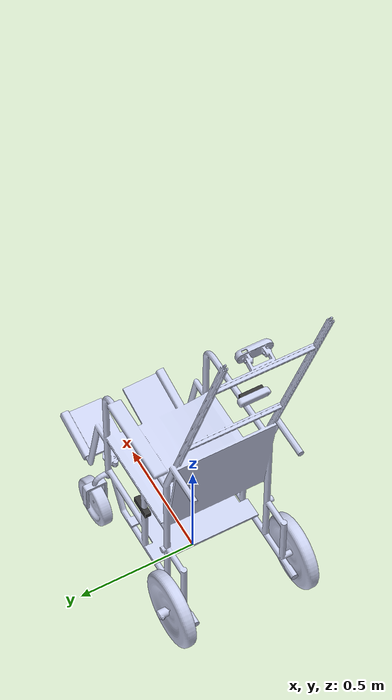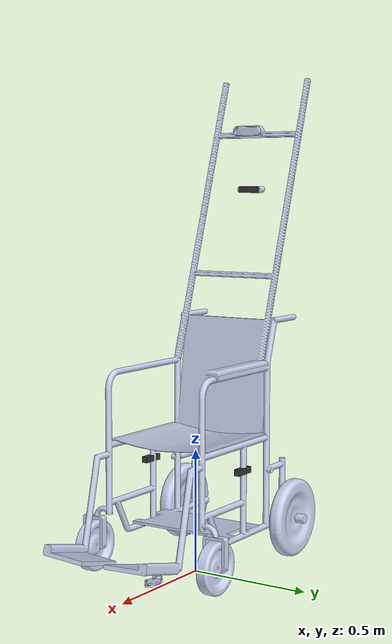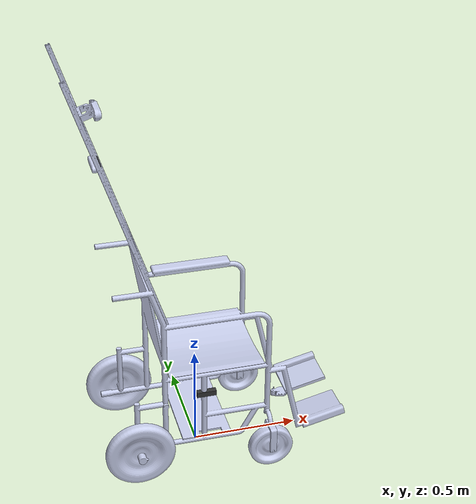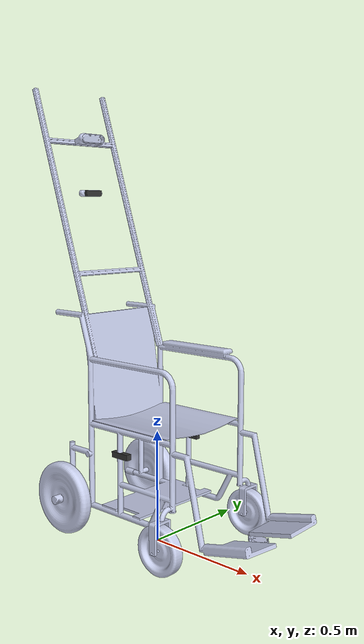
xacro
<?xml version="1.0" encoding="utf-8"?>
<robot
  name="wheelchair_description" xmlns:xacro="http://ros.org/wiki/xacro">

  <!-- Start GZ or Ignition depending on ROS 2 Version -->
  <xacro:arg name="is_ignition" default="true"/>

  <!-- Load Simulated or Real Hardware Interfaces -->
  <xacro:arg name="is_sim" default="true"/>

  <!-- Mathematical constants (pi is already defined by xacro) -->

  <!-- Include Gazebo Parameters -->
  <xacro:include filename="$(find wheelchair_description)/urdf/wc_gazebo.xacro" />

  <!-- Include ros2_control Plugins -->
  <xacro:include filename="$(find wheelchair_description)/urdf/wc_control.xacro" />

  <!-- Include Multi-Camera Configuration (Left + Right cameras) -->
  <xacro:include filename="$(find wheelchair_description)/urdf/cameras.xacro" />

  <link name="base_link">
  </link>

  <joint name="base_link_joint" type="fixed">
    <parent link="base_link"/>
    <child link="wheelchair_main"/>
    <origin xyz="0 0 0.2" rpy="0 0 0"/>
  </joint>

  <link
    name="wheelchair_main">
    <inertial>
      <origin
        xyz="0.023007 0.0098899 0.35723"
        rpy="0 0 0" />
      <mass
        value="50" />
      <inertia
        ixx="0.59682"
        ixy="-1.598E-05"
        ixz="0.20053"
        iyy="0.9932"
        iyz="7.2097E-05"
        izz="0.50644" />
    </inertial>
    <visual>
      <origin
        xyz="0 0 0"
        rpy="0 0 0" />
      <geometry>
        <mesh
          filename="package://wheelchair_description/meshes/wheelchair_main.STL"/>
      </geometry>
      <material
        name="">
        <color
          rgba="0.79216 0.81961 0.93333 1" />
      </material>
    </visual>
    <collision>
      <origin
        xyz="0 0 0"
        rpy="0 0 0" />
      <geometry>
        <mesh
          filename="package://wheelchair_description/meshes/wheelchair_main.STL"/>
      </geometry>
    </collision>
  </link>
  <link
    name="left_wheel">
    <inertial>
      <origin
        xyz="0 -8.3267E-17 -0.016"
        rpy="0 0 0" />
      <mass
        value="3.5068" />
      <inertia
        ixx="0.025596"
        ixy="1.4766E-18"
        ixz="3.4387E-17"
        iyy="0.025596"
        iyz="-1.1439E-19"
        izz="0.049823" />
    </inertial>
    <visual>
      <origin
        xyz="0 0 0"
        rpy="0 0 0" />
      <geometry>
        <mesh
          filename="package://wheelchair_description/meshes/left_wheel.STL" />
      </geometry>
      <material
        name="">
        <color
          rgba="0.79216 0.81961 0.93333 1" />
      </material>
    </visual>
    <collision>
      <origin
        xyz="0 0 0"
        rpy="0 0 0" />
      <geometry>
        <mesh
          filename="package://wheelchair_description/meshes/left_wheel.STL" />
      </geometry>
    </collision>
  </link>
  <joint
    name="leftwheel"
    type="continuous">
    <origin
      xyz="-0.31984 0.285 -0.00794"
      rpy="-1.5708 0 0" />
    <parent
      link="wheelchair_main" />
    <child
      link="left_wheel" />
    <axis
      xyz="0 0 1" />
    <limit
      lower="-3.14"
      upper="3.14"
      effort="25"
      velocity="20" />
  </joint>
  <link
    name="left_encoder">
    <inertial>
      <origin
        xyz="-0.0001485 -4.9468E-06 0.038366"
        rpy="0 0 0" />
      <mass
        value="0.16" />
      <inertia
        ixx="7.5141E-06"
        ixy="-3.4015E-09"
        ixz="4.8456E-08"
        iyy="7.6349E-06"
        iyz="6.7412E-10"
        izz="7.5873E-06" />
    </inertial>
    <visual>
      <origin
        xyz="0 0 0"
        rpy="0 0 0" />
      <geometry>
        <mesh
          filename="package://wheelchair_description/meshes/left_encoder.STL"/>
      </geometry>
      <material
        name="">
        <color
          rgba="0.79216 0.81961 0.93333 1" />
      </material>
    </visual>
    <collision>
      <origin
        xyz="0 0 0"
        rpy="0 0 0" />
      <geometry>
        <mesh
          filename="package://wheelchair_description/meshes/left_encoder.STL" />
      </geometry>
    </collision>
  </link>
  <joint
    name="l_encoder_joint"
    type="fixed">
    <origin
      xyz="0 0 -0.015366"
      rpy="0 0 0" />
    <parent
      link="left_wheel" />
    <child
      link="left_encoder" />
    <axis
      xyz="0 0 0" />
  </joint>
  <link
    name="right_wheel">
    <inertial>
      <origin
        xyz="-1.11022302462516E-16 3.88578058618805E-16 0.0159999999999998"
        rpy="0 0 0" />
      <mass
        value="3.50680611696861" />
      <inertia
        ixx="0.0255963516724083"
        ixy="1.16466719109124E-18"
        ixz="6.8967822043798E-18"
        iyy="0.0255963516724083"
        iyz="-9.1248246390169E-19"
        izz="0.0498226133842181" />
    </inertial>
    <visual>
      <origin
        xyz="0 0 0"
        rpy="0 0 0" />
      <geometry>
        <mesh
          filename="package://wheelchair_description/meshes/right_wheel.STL" />
      </geometry>
      <material
        name="">
        <color
          rgba="0.792156862745098 0.819607843137255 0.933333333333333 1" />
      </material>
    </visual>
    <collision>
      <origin
        xyz="0 0 0"
        rpy="0 0 0" />
      <geometry>
        <mesh
          filename="package://wheelchair_description/meshes/right_wheel.STL" />
      </geometry>
    </collision>
  </link>
  <joint
    name="rightwheel"
    type="continuous">
    <origin
      xyz="-0.31984 -0.285 -0.00794"
      rpy="-1.5708 0 0" />
    <parent
      link="wheelchair_main" />
    <child
      link="right_wheel" />
    <axis
      xyz="0 0 1" />
    <limit
      lower="-3.14"
      upper="3.14"
      effort="25"
      velocity="30" />
  </joint>
  <link
    name="right_encoder">
    <inertial>
      <origin
        xyz="0.00014858 -3.8114E-07 -0.038366"
        rpy="0 0 0" />
      <mass
        value="0.16" />
      <inertia
        ixx="7.514E-06"
        ixy="-3.1326E-10"
        ixz="4.8454E-08"
        iyy="7.635E-06"
        iyz="8.1459E-10"
        izz="7.5873E-06" />
    </inertial>
    <visual>
      <origin
        xyz="0 0 0"
        rpy="0 0 0" />
      <geometry>
        <mesh
          filename="package://wheelchair_description/meshes/right_encoder.STL" />
      </geometry>
      <material
        name="">
        <color
          rgba="0.79216 0.81961 0.93333 1" />
      </material>
    </visual>
    <collision>
      <origin
        xyz="0 0 0"
        rpy="0 0 0" />
      <geometry>
        <mesh
          filename="package://wheelchair_description/meshes/right_encoder.STL" />
      </geometry>
    </collision>
  </link>
  <joint
    name="r_encoder_joint"
    type="fixed">
    <origin
      xyz="0 0 0.015366"
      rpy="0 0 0" />
    <parent
      link="right_wheel" />
    <child
      link="right_encoder" />
    <axis
      xyz="0 0 0" />
  </joint>

  <link
    name="left_castor">
    <inertial>
      <origin
        xyz="0 2.7756E-17 -0.050849"
        rpy="0 0 0" />
      <mass
        value="0.11252" />
      <inertia
        ixx="0.00033369"
        ixy="1.4451E-06"
        ixz="8.6584E-21"
        iyy="0.00018303"
        iyz="-2.9977E-20"
        izz="0.00016795" />
    </inertial>
    <visual>
      <origin
        xyz="0 0 0"
        rpy="0 0 0" />
      <geometry>
        <mesh
          filename="package://wheelchair_description/meshes/left_castor.STL"  />
      </geometry>
      <material
        name="">
        <color
          rgba="0.79216 0.81961 0.93333 1" />
      </material>
    </visual>
    <collision>
      <origin
        xyz="0 0 0"
        rpy="0 0 0" />
      <geometry>
        <mesh
          filename="package://wheelchair_description/meshes/left_castor.STL" />
      </geometry>
    </collision>
  </link>
  <joint
    name="leftcastor"
    type="fixed">
    <origin
      xyz="0.29024 0.27855 0.053019"
      rpy="0 0 0" />
    <parent
      link="wheelchair_main" />
    <child
      link="left_castor" />
    <axis
      xyz="0 0 -1" />

    <dynamics damping="0.0" friction="0.0"/>
  </joint>

  <link
    name="l_castor_wheel">
    <inertial>
      <origin
        xyz="0.0004998 0 -0.052109"
        rpy="0 0 0" />
      <mass
        value="1.0084" />
      <inertia
        ixx="0.0035383"
        ixy="1.3326E-19"
        ixz="-3.1067E-05"
        iyy="0.003538"
        iyz="-1.9603E-18"
        izz="0.0067771" />
    </inertial>
    <visual>
      <origin
        xyz="0 0 0"
        rpy="0 0 0" />
      <geometry>
        <mesh
          filename="package://wheelchair_description/meshes/l_castor_wheel.STL"  />
      </geometry>
      <material
        name="">
        <color
          rgba="0.79216 0.81961 0.93333 1" />
      </material>
    </visual>
    <collision>
      <origin xyz="0 0 -0.05" rpy="0 0 0" />
      <geometry>
        <sphere radius="0.1" />
      </geometry>
    </collision>
  </link>
  <joint
    name="leftcastorwheel"
    type="fixed">
    <origin
      xyz="-0.00049873 0.051998 -0.12062"
      rpy="-1.5708 0 0" />
    <parent
      link="left_castor" />
    <child
      link="l_castor_wheel" />
    <axis
      xyz="0 0 -1" />
    <dynamics damping="0.01" friction="0.0"/>
  </joint>
  <link
    name="right_castor">
    <inertial>
      <origin
        xyz="0 2.2204E-16 -0.050849"
        rpy="0 0 0" />
      <mass
        value="0.11252" />
      <inertia
        ixx="0.00033368"
        ixy="2.0184E-06"
        ixz="-3.0452E-20"
        iyy="0.00018305"
        iyz="2.6858E-20"
        izz="0.00016795" />
    </inertial>
    <visual>
      <origin
        xyz="0 0 0"
        rpy="0 0 0" />
      <geometry>
        <mesh
          filename="package://wheelchair_description/meshes/right_castor.STL" />
      </geometry>
      <material
        name="">
        <color
          rgba="0.79216 0.81961 0.93333 1" />
      </material>
    </visual>
    <collision>
      <origin
        xyz="0 0 0"
        rpy="0 0 0" />
      <geometry>
        <mesh
          filename="package://wheelchair_description/meshes/right_castor.STL"/>
      </geometry>
    </collision>
  </link>
  <joint
    name="rightcastor"
    type="fixed">
    <origin
      xyz="0.29024 -0.29047 0.053019"
      rpy="0 0 0" />
    <parent
      link="wheelchair_main" />
    <child
      link="right_castor" />
    <axis
      xyz="0 0 -1" />
    <dynamics damping="0.0" friction="0.0"/>
  </joint>

  <link
    name="r_castor_wheel">
    <inertial>
      <origin
        xyz="-0.00062904 -4.1633E-17 0.046953"
        rpy="0 0 0" />
      <mass
        value="1.0084" />
      <inertia
        ixx="0.0035386"
        ixy="-3.0674E-19"
        ixz="-4.339E-05"
        iyy="0.003538"
        iyz="-1.399E-19"
        izz="0.0067768" />
    </inertial>
    <visual>
      <origin
        xyz="0 0 0"
        rpy="0 0 0" />
      <geometry>
        <mesh
          filename="package://wheelchair_description/meshes/r_castor_wheel.STL" />
      </geometry>
      <material
        name="">
        <color
          rgba="0.79216 0.81961 0.93333 1" />
      </material>
    </visual>
    <collision>
      <origin xyz="0 0 -0.05" rpy="0 0 0" />
      <geometry>
        <sphere radius="0.1" />
      </geometry>
    </collision>
  </link>
  <joint
    name="rcastorwheel"
    type="fixed">
    <origin
      xyz="0.00062961 -0.046996 -0.12062"
      rpy="-1.5708 0 0" />
    <parent
      link="right_castor" />
    <child
      link="r_castor_wheel" />
    <axis
      xyz="0 0 -1" />
    <dynamics damping="0.01" friction="0.0"/>
  </joint>
  <link
    name="lidar">
    <inertial>
      <origin
        xyz="-0.017408 -0.0015843 0.028267"
        rpy="0 0 0" />
      <mass
        value="0.17" />
      <inertia
        ixx="4.4866E-06"
        ixy="-2.7371E-07"
        ixz="-3.8334E-08"
        iyy="1.115E-05"
        iyz="-1.1322E-07"
        izz="1.4894E-05" />
    </inertial>
    <visual>
      <origin
        xyz="0 0 0"
        rpy="0 0 0" />
      <geometry>
        <mesh
          filename="package://wheelchair_description/meshes/lidar.STL" />
      </geometry>
      <material
        name="">
        <color
          rgba="0.79216 0.81961 0.93333 1" />
      </material>
    </visual>
    <collision>
      <origin
        xyz="0 0 0"
        rpy="0 0 0" />
      <geometry>
        <mesh
          filename="package://wheelchair_description/meshes/lidar.STL" />
      </geometry>
    </collision>
  </link>
  <joint
    name="lidar_joint"
    type="fixed">
    <origin
      xyz="0.475 0.12 -0.13"
      rpy="0 0 0" />
    <parent
      link="wheelchair_main" />
    <child
      link="lidar" />
    <axis
      xyz="0 0 0" />
  </joint>
  <!-- laser frame: 180° Z-rotated alias of lidar (RPLidar publishes in 'laser' frame) -->
  <link name="laser"/>
  <joint name="laser_joint" type="fixed">
    <origin xyz="0 0 0" rpy="0 0 3.14159265358979"/>
    <parent link="lidar"/>
    <child link="laser"/>
  </joint>
  <link
    name="camera">
    <inertial>
      <origin
        xyz="-0.01312 -0.00011035 3.4198E-05"
        rpy="0 0 0" />
      <mass
        value="0.083345" />
      <inertia
        ixx="0.00010134"
        ixy="-3.9092E-09"
        ixz="-8.3231E-09"
        iyy="9.5452E-06"
        iyz="1.103E-11"
        izz="0.00010036" />
    </inertial>
    <visual>
      <origin
        xyz="0 0 0"
        rpy="0 0 0" />
      <geometry>
        <mesh
          filename="package://wheelchair_description/meshes/camera.STL"  />
      </geometry>
      <material
        name="">
        <color
          rgba="0.79216 0.81961 0.93333 1" />
      </material>
    </visual>
    <collision>
      <origin
        xyz="0 0 0"
        rpy="0 0 0" />
      <geometry>
        <mesh
          filename="package://wheelchair_description/meshes/camera.STL" />
      </geometry>
    </collision>
  </link>
  <joint
    name="camera_joint"
    type="fixed">
    <origin
      xyz="-0.41 0 1.34"
      rpy="0 0 0" />
    <parent
      link="wheelchair_main" />
    <child
      link="camera" />
    <axis
      xyz="0 0 0" />
  </joint>
  <!-- RealSense D455 Camera Link (keeping D435i naming for compatibility) -->
  <link name="camera_link">
    <visual>
      <origin xyz="0 0 0" rpy="0 0 0"/>
      <geometry>
        <box size="0.025 0.090 0.025"/>
      </geometry>
      <material name="camera_material">
        <color rgba="0.2 0.2 0.2 1.0"/>
      </material>
    </visual>
  </link>

  <joint name="camera_link_joint" type="fixed">
    <origin xyz="0 0 0" rpy="0 0 0"/>
    <parent link="camera"/>
    <child link="camera_link"/>
  </joint>

  <!-- Camera Color Optical Frame (standard ROS camera frame) -->
  <link name="camera_color_optical_frame"/>

  <joint name="camera_color_optical_joint" type="fixed">
    <origin xyz="0 0 0" rpy="-1.5708 0 -1.5708"/>
    <parent link="camera_link"/>
    <child link="camera_color_optical_frame"/>
  </joint>

  <!-- Camera Depth Optical Frame (required for depth fusion) -->
  <link name="camera_depth_optical_frame"/>

  <joint name="camera_depth_optical_joint" type="fixed">
    <origin xyz="0 0 0" rpy="-1.5708 0 -1.5708"/>
    <parent link="camera_link"/>
    <child link="camera_depth_optical_frame"/>
  </joint>

  <!-- Camera Depth Frame (intermediate frame used by RealSense driver) -->
  <link name="camera_depth_frame"/>

  <joint name="camera_depth_frame_joint" type="fixed">
    <origin xyz="0 0 0" rpy="0 0 0"/>
    <parent link="camera_link"/>
    <child link="camera_depth_frame"/>
  </joint>

  <!-- IMU Link (physical IMU location in camera) -->
  <link name="IMU">
    <inertial>
      <origin xyz="0 0 -0.000825" rpy="0 0 0" />
      <mass value="0.025" />
      <inertia
        ixx="5.2429E-08" ixy="-1.5439E-23" ixz="1.2131E-23"
        iyy="4.2325E-08" iyz="2.1477E-24"
        izz="9.4317E-08" />
    </inertial>
    <visual>
      <origin xyz="0 0 0" rpy="0 0 0" />
      <geometry>
        <mesh filename="package://wheelchair_description/meshes/IMU.STL"/>
      </geometry>
      <material name="">
        <color rgba="0.79216 0.81961 0.93333 1" />
      </material>
    </visual>
    <collision>
      <origin xyz="0 0 0" rpy="0 0 0" />
      <geometry>
        <mesh filename="package://wheelchair_description/meshes/IMU.STL" />
      </geometry>
    </collision>
  </link>

  <!-- IMU positioned at RealSense D455 IMU location relative to camera -->
  <joint name="IMU_joint" type="fixed">
    <origin xyz="-0.01174 -0.00552 0.0051" rpy="0 0 0" />
    <parent link="camera_link" />
    <child link="IMU" />
  </joint>

  <!-- IMU Optical Frame (RealSense D455 standard orientation, keeping D435i naming) -->
  <link name="camera_imu_optical_frame"/>

  <joint name="camera_imu_optical_joint" type="fixed">
    <!-- RealSense D455 IMU frame: X=right, Y=down, Z=forward (optical convention) -->
    <origin xyz="0 0 0" rpy="-1.5708 0 -1.5708"/>
    <parent link="IMU"/>
    <child link="camera_imu_optical_frame"/>
  </joint>

  <!-- Additional convenience frames for different frame conventions -->

  <!-- IMU Frame aligned with robot base (for EKF) -->
  <link name="imu_link"/>

  <joint name="imu_link_joint" type="fixed">
    <!-- Transform from camera optical frame to robot base frame convention -->
    <!-- This transforms from camera optical (X=right, Y=down, Z=forward) -->
    <!-- To robot base frame (X=forward, Y=left, Z=up) -->
    <origin xyz="0 0 0" rpy="0 1.5708 1.5708"/>
    <parent link="camera_imu_optical_frame"/>
    <child link="imu_link"/>
  </joint>

  <!-- Simplified IMU Link directly connected to base_link (bumperbot approach) -->
  <link name="imu_link_simple"/>

  <joint name="imu_link_simple_joint" type="fixed">
    <!-- Direct connection to base_link - estimate IMU position relative to base_link -->
    <!-- Based on camera position (-0.41, 0, 1.34) + IMU offset in camera -->
    <origin xyz="-0.42 0 1.35" rpy="0 0 0"/>
    <parent link="base_link"/>
    <child link="imu_link_simple"/>
  </joint>

</robot>

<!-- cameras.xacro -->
<robot xmlns:xacro="http://ros.org/wiki/xacro">

  <!-- Camera macro for RealSense D455/D435i -->
  <xacro:macro name="realsense_camera" params="name parent xyz rpy">

    <!-- Camera Physical Link -->
    <link name="${name}_link">
      <visual>
        <origin xyz="0 0 0" rpy="0 0 0"/>
        <geometry>
          <box size="0.025 0.090 0.025"/>
        </geometry>
        <material name="${name}_material">
          <color rgba="0.2 0.2 0.2 1.0"/>
        </material>
      </visual>
      <inertial>
        <origin xyz="0 0 0" rpy="0 0 0"/>
        <mass value="0.083"/>
        <inertia ixx="0.0001" ixy="0" ixz="0" iyy="0.00001" iyz="0" izz="0.0001"/>
      </inertial>
      <collision>
        <origin xyz="0 0 0" rpy="0 0 0"/>
        <geometry>
          <box size="0.025 0.090 0.025"/>
        </geometry>
      </collision>
    </link>

    <joint name="${name}_link_joint" type="fixed">
      <origin xyz="${xyz}" rpy="${rpy}"/>
      <parent link="${parent}"/>
      <child link="${name}_link"/>
    </joint>

    <!-- Depth Optical Frame (ROS standard: X-right, Y-down, Z-forward) -->
    <link name="${name}_depth_optical_frame"/>

    <joint name="${name}_depth_optical_joint" type="fixed">
      <!-- Transform from camera body frame to optical frame -->
      <origin xyz="0 0 0" rpy="-1.5708 0 -1.5708"/>
      <parent link="${name}_link"/>
      <child link="${name}_depth_optical_frame"/>
    </joint>

    <!-- Color Optical Frame -->
    <link name="${name}_color_optical_frame"/>

    <joint name="${name}_color_optical_joint" type="fixed">
      <origin xyz="0 0 0" rpy="-1.5708 0 -1.5708"/>
      <parent link="${name}_link"/>
      <child link="${name}_color_optical_frame"/>
    </joint>

    <!-- Depth Frame (intermediate frame used by RealSense driver) -->
    <link name="${name}_depth_frame"/>

    <joint name="${name}_depth_frame_joint" type="fixed">
      <origin xyz="0 0 0" rpy="0 0 0"/>
      <parent link="${name}_link"/>
      <child link="${name}_depth_frame"/>
    </joint>

  </xacro:macro>

  <!-- LEFT CAMERA (mapping_camera) - D455           -->
  <!-- Serial: 146222253403                          -->
  <!-- Position: (0, 0.22, 0.44m) from base_link     -->
  <!-- Facing left (+90 degrees yaw)                 -->
  <xacro:realsense_camera
    name="mapping_camera"
    parent="wheelchair_main"
    xyz="0 0.22 0.24"
    rpy="0 0 1.5708"/>

  <!-- RIGHT CAMERA (right_camera) - D435i           -->
  <!-- Serial: 207522077542                          -->
  <!-- Position: (0, -0.22, 0.44m) from base_link    -->
  <!-- Facing right (-90 degrees yaw)                -->
  <xacro:realsense_camera
    name="right_camera"
    parent="wheelchair_main"
    xyz="0 -0.22 0.24"
    rpy="0 0 -1.5708"/>

</robot>
